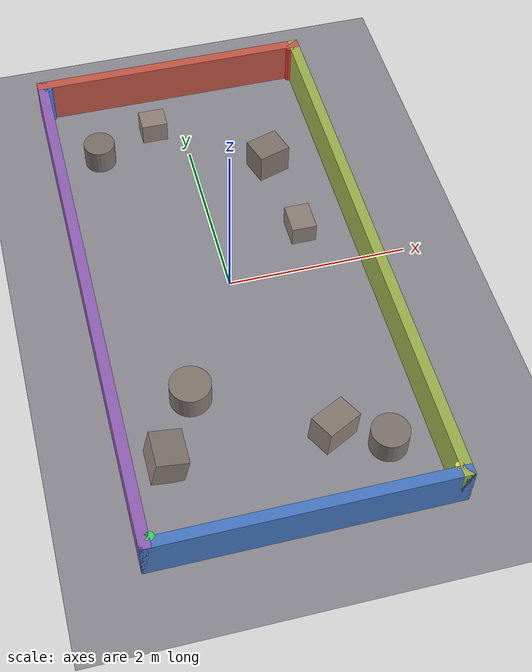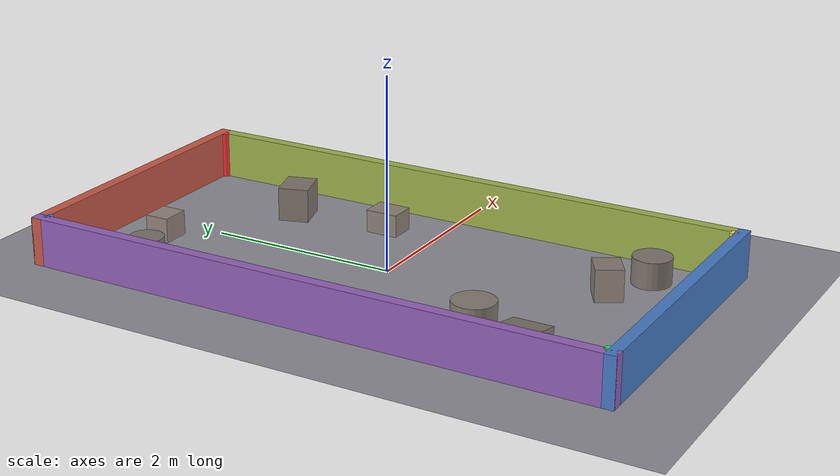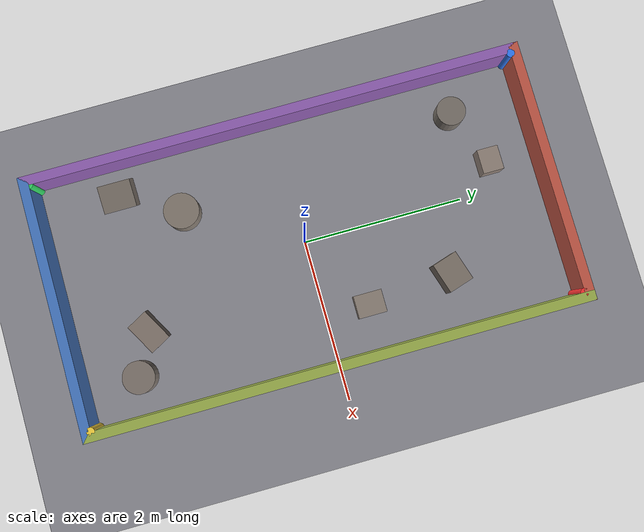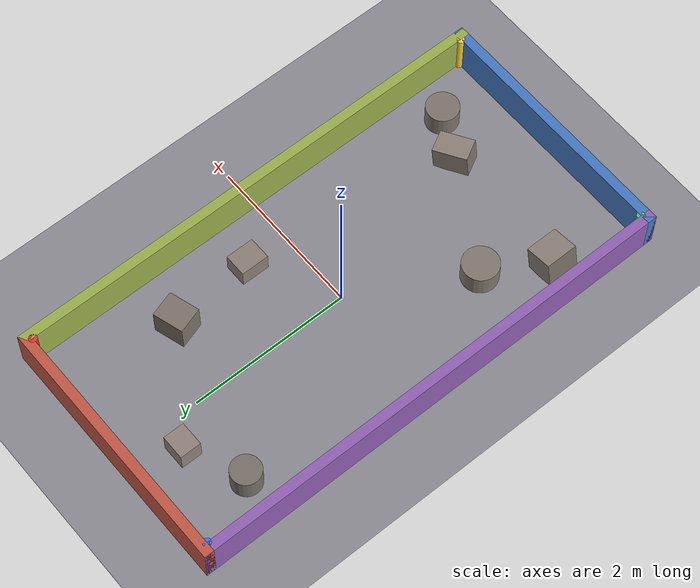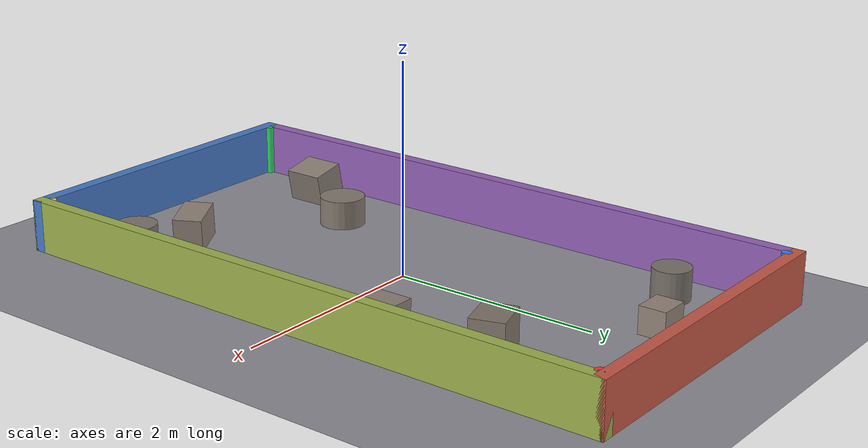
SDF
<?xml version="1.0" ?>
<!--
  Earth exploration arena: 3 m x 6 m (18 m²) walled box inside a 20x20 m ground plane.
  world_preset:=earth_explore via gazebo_rover.launch.py — robot spawns near (0,0).
-->
<sdf version="1.11">
  <world name="earth_arena_explore">

    <physics name="1ms" type="dartsim">
      <max_step_size>0.001</max_step_size>
      <real_time_factor>1.0</real_time_factor>
      <real_time_update_rate>1000</real_time_update_rate>
    </physics>

    <plugin filename="gz-sim-physics-system"
            name="gz::sim::systems::Physics"/>
    <plugin filename="gz-sim-user-commands-system"
            name="gz::sim::systems::UserCommands"/>
    <plugin filename="gz-sim-scene-broadcaster-system"
            name="gz::sim::systems::SceneBroadcaster"/>
    <plugin filename="gz-sim-contact-system"
            name="gz::sim::systems::Contact"/>
    <plugin filename="gz-sim-sensors-system"
            name="gz::sim::systems::Sensors">
      <render_engine>ogre2</render_engine>
    </plugin>
    <plugin filename="gz-sim-imu-system"
            name="gz::sim::systems::Imu"/>

    <gravity>0 0 -9.81</gravity>

    <scene>
      <ambient>0.45 0.45 0.50 1</ambient>
      <background>0.55 0.75 0.95 1</background>
      <shadows>true</shadows>
      <grid>false</grid>
      <sky/>
    </scene>

    <light type="directional" name="sun">
      <cast_shadows>true</cast_shadows>
      <pose>0 0 10 0 0 0</pose>
      <diffuse>1.0 0.97 0.92 1</diffuse>
      <specular>0.5 0.5 0.5 1</specular>
      <direction>-0.4 0.3 -1.0</direction>
    </light>

    <model name="ground_plane">
      <static>true</static>
      <link name="link">
        <collision name="collision">
          <geometry>
            <plane><normal>0 0 1</normal><size>20 20</size></plane>
          </geometry>
          <surface>
            <friction>
              <ode>
                <mu>1.2</mu>
                <mu2>1.2</mu2>
              </ode>
            </friction>
            <contact>
              <ode>
                <kp>1000000.0</kp>
                <kd>100.0</kd>
                <min_depth>0.001</min_depth>
              </ode>
            </contact>
          </surface>
        </collision>
        <visual name="visual">
          <geometry>
            <plane><normal>0 0 1</normal><size>20 20</size></plane>
          </geometry>
          <material>
            <ambient>0.35 0.35 0.38 1</ambient>
            <diffuse>0.55 0.55 0.58 1</diffuse>
            <specular>0.08 0.08 0.08 1</specular>
          </material>
        </visual>
      </link>
    </model>

    <!-- 3 x 6 m boundary walls (x: -1.5..1.5, y: -3..3) -->
    <model name="arena_wall_north">
      <static>true</static>
      <pose>0 3.06 0.25 0 0 0</pose>
      <link name="link">
        <collision name="collision">
          <geometry><box><size>3.24 0.12 0.5</size></box></geometry>
        </collision>
        <visual name="visual">
          <geometry><box><size>3.24 0.12 0.5</size></box></geometry>
          <material>
            <ambient>0.55 0.25 0.20 1</ambient>
            <diffuse>0.78 0.35 0.28 1</diffuse>
          </material>
        </visual>
      </link>
    </model>
    <model name="arena_wall_south">
      <static>true</static>
      <pose>0 -3.06 0.25 0 0 0</pose>
      <link name="link">
        <collision name="collision">
          <geometry><box><size>3.24 0.12 0.5</size></box></geometry>
        </collision>
        <visual name="visual">
          <geometry><box><size>3.24 0.12 0.5</size></box></geometry>
          <material>
            <ambient>0.20 0.35 0.55 1</ambient>
            <diffuse>0.28 0.48 0.78 1</diffuse>
          </material>
        </visual>
      </link>
    </model>
    <model name="arena_wall_east">
      <static>true</static>
      <pose>1.56 0 0.25 0 0 0</pose>
      <link name="link">
        <collision name="collision">
          <geometry><box><size>0.12 6.24 0.5</size></box></geometry>
        </collision>
        <visual name="visual">
          <geometry><box><size>0.12 6.24 0.5</size></box></geometry>
          <material>
            <ambient>0.45 0.50 0.22 1</ambient>
            <diffuse>0.62 0.70 0.30 1</diffuse>
          </material>
        </visual>
      </link>
    </model>
    <model name="arena_wall_west">
      <static>true</static>
      <pose>-1.56 0 0.25 0 0 0</pose>
      <link name="link">
        <collision name="collision">
          <geometry><box><size>0.12 6.24 0.5</size></box></geometry>
        </collision>
        <visual name="visual">
          <geometry><box><size>0.12 6.24 0.5</size></box></geometry>
          <material>
            <ambient>0.42 0.28 0.52 1</ambient>
            <diffuse>0.58 0.38 0.72 1</diffuse>
          </material>
        </visual>
      </link>
    </model>

    <!-- Corner posts at (±1.5, ±3) with collision -->
    <model name="corner_post_ne">
      <static>true</static>
      <pose>1.5 3.0 0.25 0 0 0</pose>
      <link name="link">
        <collision name="collision">
          <geometry><cylinder><radius>0.05</radius><length>0.5</length></cylinder></geometry>
        </collision>
        <visual name="v">
          <geometry><cylinder><radius>0.05</radius><length>0.5</length></cylinder></geometry>
          <material>
            <ambient>0.8 0.15 0.15 1</ambient>
            <diffuse>1.0 0.20 0.20 1</diffuse>
          </material>
        </visual>
      </link>
    </model>
    <model name="corner_post_nw">
      <static>true</static>
      <pose>-1.5 3.0 0.25 0 0 0</pose>
      <link name="link">
        <collision name="collision">
          <geometry><cylinder><radius>0.05</radius><length>0.5</length></cylinder></geometry>
        </collision>
        <visual name="v">
          <geometry><cylinder><radius>0.05</radius><length>0.5</length></cylinder></geometry>
          <material>
            <ambient>0.15 0.40 0.85 1</ambient>
            <diffuse>0.20 0.50 1.00 1</diffuse>
          </material>
        </visual>
      </link>
    </model>
    <model name="corner_post_se">
      <static>true</static>
      <pose>1.5 -3.0 0.25 0 0 0</pose>
      <link name="link">
        <collision name="collision">
          <geometry><cylinder><radius>0.05</radius><length>0.5</length></cylinder></geometry>
        </collision>
        <visual name="v">
          <geometry><cylinder><radius>0.05</radius><length>0.5</length></cylinder></geometry>
          <material>
            <ambient>0.85 0.70 0.15 1</ambient>
            <diffuse>1.00 0.85 0.25 1</diffuse>
          </material>
        </visual>
      </link>
    </model>
    <model name="corner_post_sw">
      <static>true</static>
      <pose>-1.5 -3.0 0.25 0 0 0</pose>
      <link name="link">
        <collision name="collision">
          <geometry><cylinder><radius>0.05</radius><length>0.5</length></cylinder></geometry>
        </collision>
        <visual name="v">
          <geometry><cylinder><radius>0.05</radius><length>0.5</length></cylinder></geometry>
          <material>
            <ambient>0.15 0.65 0.30 1</ambient>
            <diffuse>0.20 0.85 0.40 1</diffuse>
          </material>
        </visual>
      </link>
    </model>

    <!-- Static rocks (Nav2 / lidar obstacles), clear of spawn at origin -->
    <model name="rock_01">
      <static>true</static>
      <pose>0.85 1.6 0.18 0 0 0.3</pose>
      <link name="link">
        <collision name="collision">
          <geometry><box><size>0.38 0.32 0.36</size></box></geometry>
        </collision>
        <visual name="v">
          <geometry><box><size>0.38 0.32 0.36</size></box></geometry>
          <material>
            <ambient>0.35 0.32 0.30 1</ambient>
            <diffuse>0.50 0.46 0.42 1</diffuse>
          </material>
        </visual>
      </link>
    </model>
    <model name="rock_02">
      <static>true</static>
      <pose>-0.75 -1.35 0.14 0 0 0</pose>
      <link name="link">
        <collision name="collision">
          <geometry><cylinder><radius>0.22</radius><length>0.28</length></cylinder></geometry>
        </collision>
        <visual name="v">
          <geometry><cylinder><radius>0.22</radius><length>0.28</length></cylinder></geometry>
          <material>
            <ambient>0.38 0.34 0.32 1</ambient>
            <diffuse>0.52 0.48 0.44 1</diffuse>
          </material>
        </visual>
      </link>
    </model>
    <model name="rock_03">
      <static>true</static>
      <pose>0.55 -2.1 0.16 0 0.1 0.5</pose>
      <link name="link">
        <collision name="collision">
          <geometry><box><size>0.42 0.28 0.32</size></box></geometry>
        </collision>
        <visual name="v">
          <geometry><box><size>0.42 0.28 0.32</size></box></geometry>
          <material>
            <ambient>0.40 0.36 0.33 1</ambient>
            <diffuse>0.55 0.50 0.46 1</diffuse>
          </material>
        </visual>
      </link>
    </model>
    <model name="rock_04">
      <static>true</static>
      <pose>-1.05 2.15 0.15 0 0 0.2</pose>
      <link name="link">
        <collision name="collision">
          <geometry><cylinder><radius>0.18</radius><length>0.30</length></cylinder></geometry>
        </collision>
        <visual name="v">
          <geometry><cylinder><radius>0.18</radius><length>0.30</length></cylinder></geometry>
          <material>
            <ambient>0.36 0.33 0.31 1</ambient>
            <diffuse>0.48 0.45 0.42 1</diffuse>
          </material>
        </visual>
      </link>
    </model>
    <model name="rock_05">
      <static>true</static>
      <pose>-0.35 2.45 0.13 0 0 0</pose>
      <link name="link">
        <collision name="collision">
          <geometry><box><size>0.30 0.26 0.26</size></box></geometry>
        </collision>
        <visual name="v">
          <geometry><box><size>0.30 0.26 0.26</size></box></geometry>
          <material>
            <ambient>0.42 0.38 0.35 1</ambient>
            <diffuse>0.58 0.52 0.48 1</diffuse>
          </material>
        </visual>
      </link>
    </model>
    <model name="rock_06">
      <static>true</static>
      <pose>1.05 -2.35 0.14 0 0 0.4</pose>
      <link name="link">
        <collision name="collision">
          <geometry><cylinder><radius>0.20</radius><length>0.28</length></cylinder></geometry>
        </collision>
        <visual name="v">
          <geometry><cylinder><radius>0.20</radius><length>0.28</length></cylinder></geometry>
          <material>
            <ambient>0.37 0.34 0.32 1</ambient>
            <diffuse>0.50 0.46 0.43 1</diffuse>
          </material>
        </visual>
      </link>
    </model>
    <model name="rock_07">
      <static>true</static>
      <pose>-1.15 -2.05 0.17 0 0.2 0</pose>
      <link name="link">
        <collision name="collision">
          <geometry><box><size>0.34 0.40 0.34</size></box></geometry>
        </collision>
        <visual name="v">
          <geometry><box><size>0.34 0.40 0.34</size></box></geometry>
          <material>
            <ambient>0.39 0.35 0.33 1</ambient>
            <diffuse>0.53 0.49 0.45 1</diffuse>
          </material>
        </visual>
      </link>
    </model>
    <model name="rock_08">
      <static>true</static>
      <pose>0.95 0.55 0.12 0 0 0</pose>
      <link name="link">
        <collision name="collision">
          <geometry><box><size>0.28 0.35 0.24</size></box></geometry>
        </collision>
        <visual name="v">
          <geometry><box><size>0.28 0.35 0.24</size></box></geometry>
          <material>
            <ambient>0.41 0.37 0.34 1</ambient>
            <diffuse>0.56 0.51 0.47 1</diffuse>
          </material>
        </visual>
      </link>
    </model>

  </world>
</sdf>
